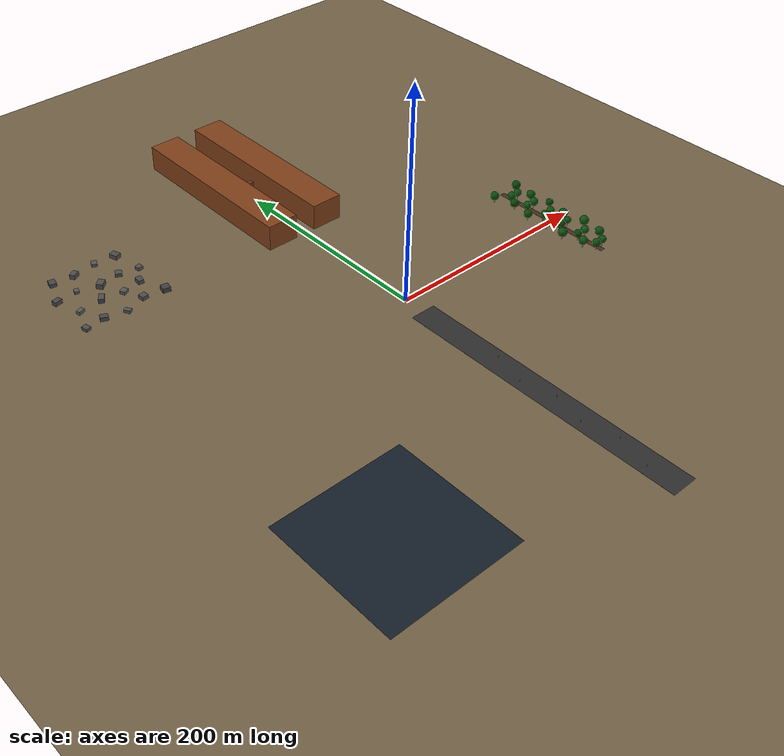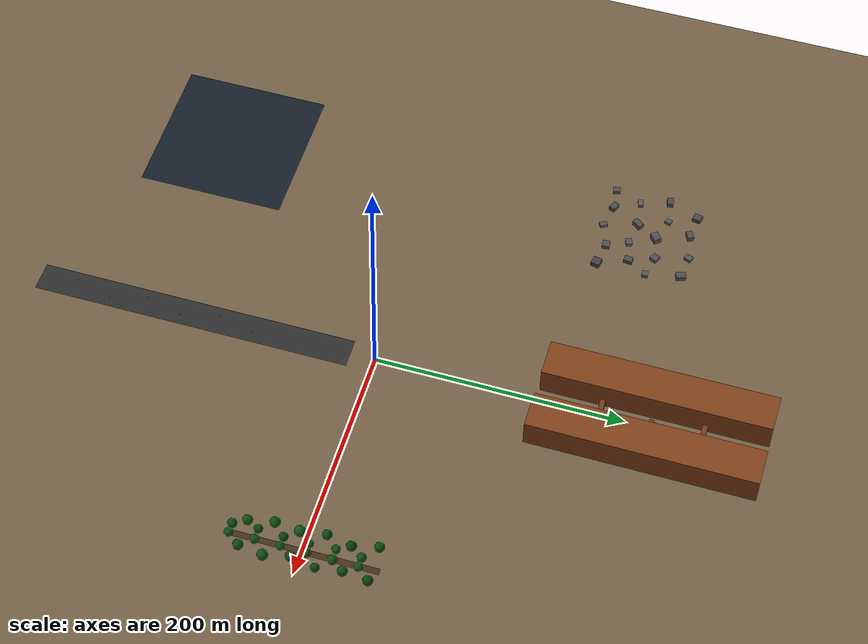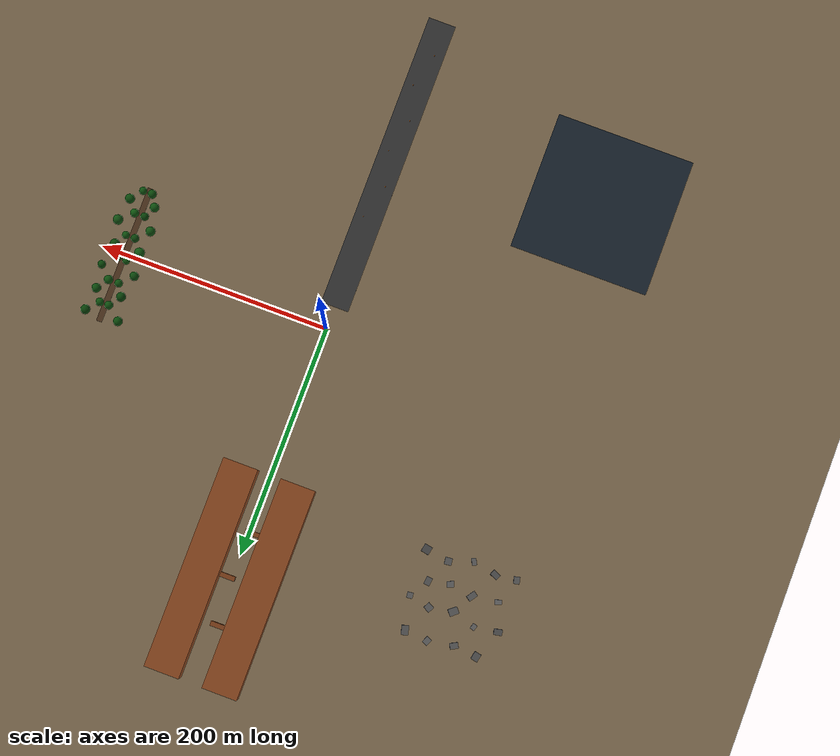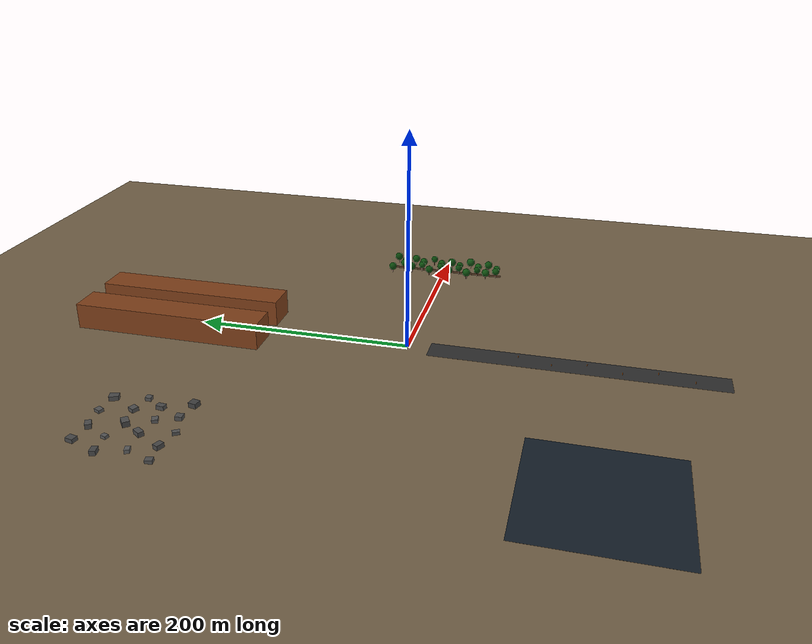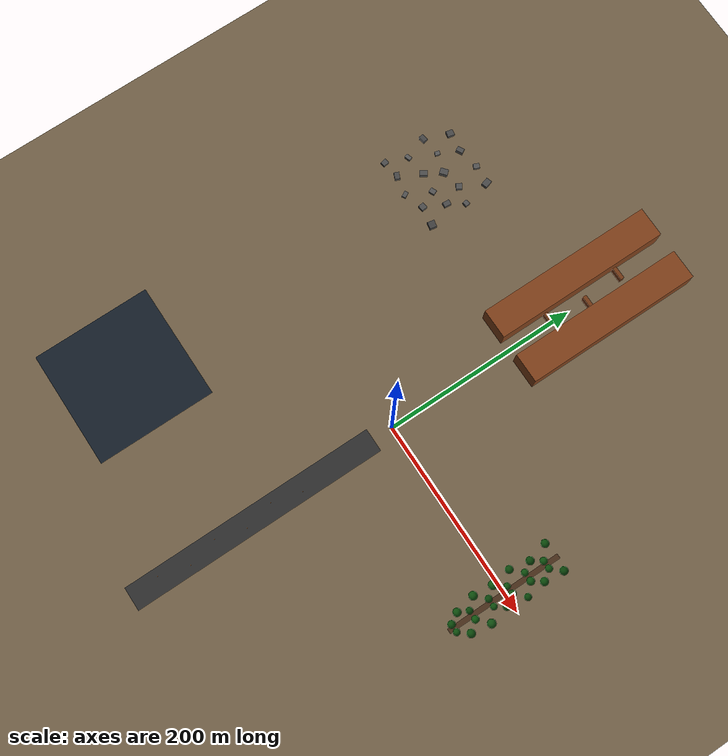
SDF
<?xml version="1.0" ?>
<sdf version="1.9">
  <world name="mega_rover_proving_ground_v4">

    <physics name="default_physics" type="ignored">
      <max_step_size>0.001</max_step_size>
      <real_time_factor>1.0</real_time_factor>
    </physics>

    <!-- Essential Gazebo Sim Plugins -->
    <plugin filename="gz-sim-physics-system" name="gz::sim::systems::Physics"/>
    <plugin filename="gz-sim-user-commands-system" name="gz::sim::systems::UserCommands"/>
    <plugin filename="gz-sim-scene-broadcaster-system" name="gz::sim::systems::SceneBroadcaster"/>
    <plugin filename="gz-sim-sensors-system" name="gz::sim::systems::Sensors"/>
    <plugin filename="gz-sim-particle-emitter-system" name="gz::sim::systems::ParticleEmitter"/>

    <!-- rmagine Embree (CPU) Map Plugin - Required for radarays radar simulation -->
    <!-- Builds a BVH acceleration structure for ray tracing over the Gazebo world -->
    <plugin name='rmagine_embree_map' filename='librmagine_embree_map_gzplugin.so'>
      <update>
        <delta_trans>0.001</delta_trans>
        <delta_rot>0.001</delta_rot>
        <delta_scale>0.001</delta_scale>
        <rate_limit>200</rate_limit>
      </update>
    </plugin>

    <!-- Sun Light -->
    <light type="directional" name="sun">
      <cast_shadows>true</cast_shadows>
      <pose>0 0 150 0.6 0.2 0</pose>
      <diffuse>0.85 0.8 0.7 1</diffuse>
      <specular>0.3 0.3 0.3 1</specular>
      <direction>-0.5 0.2 -0.8</direction>
    </light>

    <!-- Ground Plane -->
    <model name="base_ground">
      <static>true</static>
      <link name="link">
        <collision name="col">
          <geometry><plane><normal>0 0 1</normal><size>600 600</size></plane></geometry>
          <surface><friction><ode><mu>0.8</mu><mu2>0.8</mu2></ode></friction></surface>
        </collision>
        <visual name="vis">
          <geometry><plane><normal>0 0 1</normal><size>600 600</size></plane></geometry>
          <material><ambient>0.45 0.38 0.28 1</ambient><diffuse>0.45 0.38 0.28 1</diffuse></material>
        </visual>
      </link>
    </model>

    <!-- ZONE 0: HIGH SPEED SLALOM RUNWAY (Y = -150) -->
    <model name="speed_slalom_runway">
      <static>true</static>
      <pose>0 -150 0 0 0 0</pose>
      <link name="runway_strip">
        <pose>0 0 0.005 0 0 0</pose>
        <visual name="vis">
          <geometry><box><size>24 260 0.01</size></box></geometry>
          <material><ambient>0.18 0.18 0.18 1</ambient><diffuse>0.18 0.18 0.18 1</diffuse></material>
        </visual>
      </link>
      <link name="p1"><pose>-4 -100 1 0 0 0</pose><collision name="c"><geometry><cylinder><radius>0.25</radius><length>2</length></cylinder></geometry></collision><visual name="v"><geometry><cylinder><radius>0.25</radius><length>2</length></cylinder></geometry><material><ambient>0.9 0.4 0 1</ambient><diffuse>0.9 0.4 0 1</diffuse></material></visual></link>
      <link name="p2"><pose>4 -70 1 0 0 0</pose><collision name="c"><geometry><cylinder><radius>0.25</radius><length>2</length></cylinder></geometry></collision><visual name="v"><geometry><cylinder><radius>0.25</radius><length>2</length></cylinder></geometry><material><ambient>0.9 0.4 0 1</ambient><diffuse>0.9 0.4 0 1</diffuse></material></visual></link>
      <link name="p3"><pose>-4 -40 1 0 0 0</pose><collision name="c"><geometry><cylinder><radius>0.25</radius><length>2</length></cylinder></geometry></collision><visual name="v"><geometry><cylinder><radius>0.25</radius><length>2</length></cylinder></geometry><material><ambient>0.9 0.4 0 1</ambient><diffuse>0.9 0.4 0 1</diffuse></material></visual></link>
      <link name="p4"><pose>4 -10 1 0 0 0</pose><collision name="c"><geometry><cylinder><radius>0.25</radius><length>2</length></cylinder></geometry></collision><visual name="v"><geometry><cylinder><radius>0.25</radius><length>2</length></cylinder></geometry><material><ambient>0.9 0.4 0 1</ambient><diffuse>0.9 0.4 0 1</diffuse></material></visual></link>
      <link name="p5"><pose>-4 20 1 0 0 0</pose><collision name="c"><geometry><cylinder><radius>0.25</radius><length>2</length></cylinder></geometry></collision><visual name="v"><geometry><cylinder><radius>0.25</radius><length>2</length></cylinder></geometry><material><ambient>0.9 0.4 0 1</ambient><diffuse>0.9 0.4 0 1</diffuse></material></visual></link>
      <link name="p6"><pose>4 50 1 0 0 0</pose><collision name="c"><geometry><cylinder><radius>0.25</radius><length>2</length></cylinder></geometry></collision><visual name="v"><geometry><cylinder><radius>0.25</radius><length>2</length></cylinder></geometry><material><ambient>0.9 0.4 0 1</ambient><diffuse>0.9 0.4 0 1</diffuse></material></visual></link>
    </model>

    <!-- ZONE 1: DENSE FOREST WITH CENTER PATH (X=180, Y=0) -->
    <model name="forest_center_path_zone">
      <static>true</static>
      <pose>180 0 0 0 0 0</pose>

      <!-- Center Dirt Runway (5m Wide Clear Path) -->
      <link name="center_path_surface">
        <pose>0 0 0.008 0 0 0</pose>
        <visual name="v">
          <geometry><box><size>5 120 0.01</size></box></geometry>
          <material><ambient>0.28 0.18 0.1 1</ambient><diffuse>0.28 0.18 0.1 1</diffuse></material>
        </visual>
      </link>

      <!-- West Tree Line (Left of Path) -->
      <link name="tw1"><pose>-4 -55 3 0 0 0</pose><collision name="c"><geometry><cylinder><radius>0.45</radius><length>6</length></cylinder></geometry></collision><visual name="v"><geometry><cylinder><radius>0.45</radius><length>6</length></cylinder></geometry><material><ambient>0.2 0.1 0.05 1</ambient><diffuse>0.2 0.1 0.05 1</diffuse></material></visual><visual name="canopy"><pose>0 0 4 0 0 0</pose><geometry><sphere><radius>3.8</radius></sphere></geometry><material><ambient>0.04 0.28 0.04 1</ambient><diffuse>0.04 0.28 0.04 1</diffuse></material></visual></link>
      <link name="tw2"><pose>-10 -45 3 0 0 0</pose><collision name="c"><geometry><cylinder><radius>0.5</radius><length>6</length></cylinder></geometry></collision><visual name="v"><geometry><cylinder><radius>0.5</radius><length>6</length></cylinder></geometry><material><ambient>0.2 0.1 0.05 1</ambient><diffuse>0.2 0.1 0.05 1</diffuse></material></visual><visual name="canopy"><pose>0 0 4 0 0 0</pose><geometry><sphere><radius>4.0</radius></sphere></geometry><material><ambient>0.05 0.3 0.05 1</ambient><diffuse>0.05 0.3 0.05 1</diffuse></material></visual></link>
      <link name="tw3"><pose>-5 -35 3 0 0 0</pose><collision name="c"><geometry><cylinder><radius>0.4</radius><length>6</length></cylinder></geometry></collision><visual name="v"><geometry><cylinder><radius>0.4</radius><length>6</length></cylinder></geometry><material><ambient>0.2 0.1 0.05 1</ambient><diffuse>0.2 0.1 0.05 1</diffuse></material></visual><visual name="canopy"><pose>0 0 4 0 0 0</pose><geometry><sphere><radius>3.5</radius></sphere></geometry><material><ambient>0.03 0.25 0.03 1</ambient><diffuse>0.03 0.25 0.03 1</diffuse></material></visual></link>
      <link name="tw4"><pose>-14 -25 3 0 0 0</pose><collision name="c"><geometry><cylinder><radius>0.48</radius><length>6</length></cylinder></geometry></collision><visual name="v"><geometry><cylinder><radius>0.48</radius><length>6</length></cylinder></geometry><material><ambient>0.2 0.1 0.05 1</ambient><diffuse>0.2 0.1 0.05 1</diffuse></material></visual><visual name="canopy"><pose>0 0 4 0 0 0</pose><geometry><sphere><radius>4.2</radius></sphere></geometry><material><ambient>0.05 0.3 0.05 1</ambient><diffuse>0.05 0.3 0.05 1</diffuse></material></visual></link>
      <link name="tw5"><pose>-4 -15 3 0 0 0</pose><collision name="c"><geometry><cylinder><radius>0.42</radius><length>6</length></cylinder></geometry></collision><visual name="v"><geometry><cylinder><radius>0.42</radius><length>6</length></cylinder></geometry><material><ambient>0.2 0.1 0.05 1</ambient><diffuse>0.2 0.1 0.05 1</diffuse></material></visual><visual name="canopy"><pose>0 0 4 0 0 0</pose><geometry><sphere><radius>3.6</radius></sphere></geometry><material><ambient>0.04 0.26 0.04 1</ambient><diffuse>0.04 0.26 0.04 1</diffuse></material></visual></link>
      <link name="tw6"><pose>-12 -5 3 0 0 0</pose><collision name="c"><geometry><cylinder><radius>0.52</radius><length>6</length></cylinder></geometry></collision><visual name="v"><geometry><cylinder><radius>0.52</radius><length>6</length></cylinder></geometry><material><ambient>0.2 0.1 0.05 1</ambient><diffuse>0.2 0.1 0.05 1</diffuse></material></visual><visual name="canopy"><pose>0 0 4 0 0 0</pose><geometry><sphere><radius>4.4</radius></sphere></geometry><material><ambient>0.06 0.32 0.06 1</ambient><diffuse>0.06 0.32 0.06 1</diffuse></material></visual></link>
      <link name="tw7"><pose>-4 5 3 0 0 0</pose><collision name="c"><geometry><cylinder><radius>0.38</radius><length>6</length></cylinder></geometry></collision><visual name="v"><geometry><cylinder><radius>0.38</radius><length>6</length></cylinder></geometry><material><ambient>0.2 0.1 0.05 1</ambient><diffuse>0.2 0.1 0.05 1</diffuse></material></visual><visual name="canopy"><pose>0 0 4 0 0 0</pose><geometry><sphere><radius>3.3</radius></sphere></geometry><material><ambient>0.05 0.3 0.05 1</ambient><diffuse>0.05 0.3 0.05 1</diffuse></material></visual></link>
      <link name="tw8"><pose>-15 15 3 0 0 0</pose><collision name="c"><geometry><cylinder><radius>0.45</radius><length>6</length></cylinder></geometry></collision><visual name="v"><geometry><cylinder><radius>0.45</radius><length>6</length></cylinder></geometry><material><ambient>0.2 0.1 0.05 1</ambient><diffuse>0.2 0.1 0.05 1</diffuse></material></visual><visual name="canopy"><pose>0 0 4 0 0 0</pose><geometry><sphere><radius>3.9</radius></sphere></geometry><material><ambient>0.04 0.27 0.04 1</ambient><diffuse>0.04 0.27 0.04 1</diffuse></material></visual></link>
      <link name="tw9"><pose>-5 25 3 0 0 0</pose><collision name="c"><geometry><cylinder><radius>0.4</radius><length>6</length></cylinder></geometry></collision><visual name="v"><geometry><cylinder><radius>0.4</radius><length>6</length></cylinder></geometry><material><ambient>0.2 0.1 0.05 1</ambient><diffuse>0.2 0.1 0.05 1</diffuse></material></visual><visual name="canopy"><pose>0 0 4 0 0 0</pose><geometry><sphere><radius>3.5</radius></sphere></geometry><material><ambient>0.05 0.3 0.05 1</ambient><diffuse>0.05 0.3 0.05 1</diffuse></material></visual></link>
      <link name="tw10"><pose>-11 35 3 0 0 0</pose><collision name="c"><geometry><cylinder><radius>0.5</radius><length>6</length></cylinder></geometry></collision><visual name="v"><geometry><cylinder><radius>0.5</radius><length>6</length></cylinder></geometry><material><ambient>0.2 0.1 0.05 1</ambient><diffuse>0.2 0.1 0.05 1</diffuse></material></visual><visual name="canopy"><pose>0 0 4 0 0 0</pose><geometry><sphere><radius>4.1</radius></sphere></geometry><material><ambient>0.03 0.25 0.03 1</ambient><diffuse>0.03 0.25 0.03 1</diffuse></material></visual></link>
      <link name="tw11"><pose>-4 45 3 0 0 0</pose><collision name="c"><geometry><cylinder><radius>0.42</radius><length>6</length></cylinder></geometry></collision><visual name="v"><geometry><cylinder><radius>0.42</radius><length>6</length></cylinder></geometry><material><ambient>0.2 0.1 0.05 1</ambient><diffuse>0.2 0.1 0.05 1</diffuse></material></visual><visual name="canopy"><pose>0 0 4 0 0 0</pose><geometry><sphere><radius>3.7</radius></sphere></geometry><material><ambient>0.05 0.3 0.05 1</ambient><diffuse>0.05 0.3 0.05 1</diffuse></material></visual></link>
      <link name="tw12"><pose>-16 55 3 0 0 0</pose><collision name="c"><geometry><cylinder><radius>0.46</radius><length>6</length></cylinder></geometry></collision><visual name="v"><geometry><cylinder><radius>0.46</radius><length>6</length></cylinder></geometry><material><ambient>0.2 0.1 0.05 1</ambient><diffuse>0.2 0.1 0.05 1</diffuse></material></visual><visual name="canopy"><pose>0 0 4 0 0 0</pose><geometry><sphere><radius>4.0</radius></sphere></geometry><material><ambient>0.04 0.28 0.04 1</ambient><diffuse>0.04 0.28 0.04 1</diffuse></material></visual></link>

      <!-- East Tree Line (Right of Path) -->
      <link name="te1"><pose>4 -55 3 0 0 0</pose><collision name="c"><geometry><cylinder><radius>0.4</radius><length>6</length></cylinder></geometry></collision><visual name="v"><geometry><cylinder><radius>0.4</radius><length>6</length></cylinder></geometry><material><ambient>0.2 0.1 0.05 1</ambient><diffuse>0.2 0.1 0.05 1</diffuse></material></visual><visual name="canopy"><pose>0 0 4 0 0 0</pose><geometry><sphere><radius>3.4</radius></sphere></geometry><material><ambient>0.05 0.3 0.05 1</ambient><diffuse>0.05 0.3 0.05 1</diffuse></material></visual></link>
      <link name="te2"><pose>12 -45 3 0 0 0</pose><collision name="c"><geometry><cylinder><radius>0.48</radius><length>6</length></cylinder></geometry></collision><visual name="v"><geometry><cylinder><radius>0.48</radius><length>6</length></cylinder></geometry><material><ambient>0.2 0.1 0.05 1</ambient><diffuse>0.2 0.1 0.05 1</diffuse></material></visual><visual name="canopy"><pose>0 0 4 0 0 0</pose><geometry><sphere><radius>4.1</radius></sphere></geometry><material><ambient>0.04 0.28 0.04 1</ambient><diffuse>0.04 0.28 0.04 1</diffuse></material></visual></link>
      <link name="te3"><pose>4 -35 3 0 0 0</pose><collision name="c"><geometry><cylinder><radius>0.42</radius><length>6</length></cylinder></geometry></collision><visual name="v"><geometry><cylinder><radius>0.42</radius><length>6</length></cylinder></geometry><material><ambient>0.2 0.1 0.05 1</ambient><diffuse>0.2 0.1 0.05 1</diffuse></material></visual><visual name="canopy"><pose>0 0 4 0 0 0</pose><geometry><sphere><radius>3.7</radius></sphere></geometry><material><ambient>0.05 0.32 0.05 1</ambient><diffuse>0.05 0.32 0.05 1</diffuse></material></visual></link>
      <link name="te4"><pose>15 -25 3 0 0 0</pose><collision name="c"><geometry><cylinder><radius>0.5</radius><length>6</length></cylinder></geometry></collision><visual name="v"><geometry><cylinder><radius>0.5</radius><length>6</length></cylinder></geometry><material><ambient>0.2 0.1 0.05 1</ambient><diffuse>0.2 0.1 0.05 1</diffuse></material></visual><visual name="canopy"><pose>0 0 4 0 0 0</pose><geometry><sphere><radius>4.3</radius></sphere></geometry><material><ambient>0.06 0.3 0.06 1</ambient><diffuse>0.06 0.3 0.06 1</diffuse></material></visual></link>
      <link name="te5"><pose>4 -15 3 0 0 0</pose><collision name="c"><geometry><cylinder><radius>0.38</radius><length>6</length></cylinder></geometry></collision><visual name="v"><geometry><cylinder><radius>0.38</radius><length>6</length></cylinder></geometry><material><ambient>0.2 0.1 0.05 1</ambient><diffuse>0.2 0.1 0.05 1</diffuse></material></visual><visual name="canopy"><pose>0 0 4 0 0 0</pose><geometry><sphere><radius>3.3</radius></sphere></geometry><material><ambient>0.05 0.3 0.05 1</ambient><diffuse>0.05 0.3 0.05 1</diffuse></material></visual></link>
      <link name="te6"><pose>10 -5 3 0 0 0</pose><collision name="c"><geometry><cylinder><radius>0.52</radius><length>6</length></cylinder></geometry></collision><visual name="v"><geometry><cylinder><radius>0.52</radius><length>6</length></cylinder></geometry><material><ambient>0.2 0.1 0.05 1</ambient><diffuse>0.2 0.1 0.05 1</diffuse></material></visual><visual name="canopy"><pose>0 0 4 0 0 0</pose><geometry><sphere><radius>4.2</radius></sphere></geometry><material><ambient>0.04 0.27 0.04 1</ambient><diffuse>0.04 0.27 0.04 1</diffuse></material></visual></link>
      <link name="te7"><pose>4 5 3 0 0 0</pose><collision name="c"><geometry><cylinder><radius>0.44</radius><length>6</length></cylinder></geometry></collision><visual name="v"><geometry><cylinder><radius>0.44</radius><length>6</length></cylinder></geometry><material><ambient>0.2 0.1 0.05 1</ambient><diffuse>0.2 0.1 0.05 1</diffuse></material></visual><visual name="canopy"><pose>0 0 4 0 0 0</pose><geometry><sphere><radius>3.8</radius></sphere></geometry><material><ambient>0.05 0.3 0.05 1</ambient><diffuse>0.05 0.3 0.05 1</diffuse></material></visual></link>
      <link name="te8"><pose>14 15 3 0 0 0</pose><collision name="c"><geometry><cylinder><radius>0.4</radius><length>6</length></cylinder></geometry></collision><visual name="v"><geometry><cylinder><radius>0.4</radius><length>6</length></cylinder></geometry><material><ambient>0.2 0.1 0.05 1</ambient><diffuse>0.2 0.1 0.05 1</diffuse></material></visual><visual name="canopy"><pose>0 0 4 0 0 0</pose><geometry><sphere><radius>3.5</radius></sphere></geometry><material><ambient>0.03 0.26 0.03 1</ambient><diffuse>0.03 0.26 0.03 1</diffuse></material></visual></link>
      <link name="te9"><pose>4 25 3 0 0 0</pose><collision name="c"><geometry><cylinder><radius>0.46</radius><length>6</length></cylinder></geometry></collision><visual name="v"><geometry><cylinder><radius>0.46</radius><length>6</length></cylinder></geometry><material><ambient>0.2 0.1 0.05 1</ambient><diffuse>0.2 0.1 0.05 1</diffuse></material></visual><visual name="canopy"><pose>0 0 4 0 0 0</pose><geometry><sphere><radius>3.9</radius></sphere></geometry><material><ambient>0.05 0.3 0.05 1</ambient><diffuse>0.05 0.3 0.05 1</diffuse></material></visual></link>
      <link name="te10"><pose>11 35 3 0 0 0</pose><collision name="c"><geometry><cylinder><radius>0.5</radius><length>6</length></cylinder></geometry></collision><visual name="v"><geometry><cylinder><radius>0.5</radius><length>6</length></cylinder></geometry><material><ambient>0.2 0.1 0.05 1</ambient><diffuse>0.2 0.1 0.05 1</diffuse></material></visual><visual name="canopy"><pose>0 0 4 0 0 0</pose><geometry><sphere><radius>4.0</radius></sphere></geometry><material><ambient>0.04 0.28 0.04 1</ambient><diffuse>0.04 0.28 0.04 1</diffuse></material></visual></link>
      <link name="te11"><pose>4 45 3 0 0 0</pose><collision name="c"><geometry><cylinder><radius>0.42</radius><length>6</length></cylinder></geometry></collision><visual name="v"><geometry><cylinder><radius>0.42</radius><length>6</length></cylinder></geometry><material><ambient>0.2 0.1 0.05 1</ambient><diffuse>0.2 0.1 0.05 1</diffuse></material></visual><visual name="canopy"><pose>0 0 4 0 0 0</pose><geometry><sphere><radius>3.6</radius></sphere></geometry><material><ambient>0.05 0.3 0.05 1</ambient><diffuse>0.05 0.3 0.05 1</diffuse></material></visual></link>
      <link name="te12"><pose>13 55 3 0 0 0</pose><collision name="c"><geometry><cylinder><radius>0.48</radius><length>6</length></cylinder></geometry></collision><visual name="v"><geometry><cylinder><radius>0.48</radius><length>6</length></cylinder></geometry><material><ambient>0.2 0.1 0.05 1</ambient><diffuse>0.2 0.1 0.05 1</diffuse></material></visual><visual name="canopy"><pose>0 0 4 0 0 0</pose><geometry><sphere><radius>4.1</radius></sphere></geometry><material><ambient>0.03 0.25 0.03 1</ambient><diffuse>0.03 0.25 0.03 1</diffuse></material></visual></link>
    </model>

    <!-- ZONE 2: GRAND CANYON CHICANE PASS (NORTH: X=0, Y=220) -->
    <model name="canyon_chicane_complex">
      <static>true</static>
      <pose>0 220 0 0 0 0</pose>
      <link name="cliff_west"><pose>-25 0 12 0 0 0</pose><collision name="col"><geometry><box><size>30 180 24</size></box></geometry></collision><visual name="vis"><geometry><box><size>30 180 24</size></box></geometry><material><ambient>0.5 0.25 0.1 1</ambient><diffuse>0.5 0.25 0.1 1</diffuse></material></visual></link>
      <link name="cliff_east"><pose>25 0 12 0 0 0</pose><collision name="col"><geometry><box><size>30 180 24</size></box></geometry></collision><visual name="vis"><geometry><box><size>30 180 24</size></box></geometry><material><ambient>0.5 0.25 0.1 1</ambient><diffuse>0.5 0.25 0.1 1</diffuse></material></visual></link>
      <link name="baffle_1"><pose>-4 -40 4 0 0 0</pose><collision name="c"><geometry><box><size>14 4 8</size></box></geometry></collision><visual name="v"><geometry><box><size>14 4 8</size></box></geometry><material><ambient>0.45 0.22 0.08 1</ambient><diffuse>0.45 0.22 0.08 1</diffuse></material></visual></link>
      <link name="baffle_2"><pose>4 0 4 0 0 0</pose><collision name="c"><geometry><box><size>14 4 8</size></box></geometry></collision><visual name="v"><geometry><box><size>14 4 8</size></box></geometry><material><ambient>0.45 0.22 0.08 1</ambient><diffuse>0.45 0.22 0.08 1</diffuse></material></visual></link>
      <link name="baffle_3"><pose>-4 40 4 0 0 0</pose><collision name="c"><geometry><box><size>14 4 8</size></box></geometry></collision><visual name="v"><geometry><box><size>14 4 8</size></box></geometry><material><ambient>0.45 0.22 0.08 1</ambient><diffuse>0.45 0.22 0.08 1</diffuse></material></visual></link>
    </model>

    <!-- ZONE 3: MUD BASIN & RAIN SYSTEM (SOUTHWEST: X=-180, Y=-180) -->
    <model name="mud_basin_rain">
      <static>true</static>
      <pose>-180 -180 0 0 0 0</pose>
      <link name="mud_patch_main">
        <pose>0 0 0.01 0 0 0</pose>
        <collision name="col">
          <geometry><box><size>120 120 0.02</size></box></geometry>
          <surface><friction><ode><mu>0.08</mu><mu2>0.08</mu2></ode></friction></surface>
        </collision>
        <visual name="vis">
          <geometry><box><size>120 120 0.02</size></box></geometry>
          <material>
            <ambient>0.08 0.12 0.16 1</ambient>
            <diffuse>0.08 0.12 0.16 1</diffuse>
            <specular>0.98 0.98 0.98 1</specular>
          </material>
        </visual>
      </link>
      <link name="rain_emitter_link">
        <pose>0 0 18 0 0 0</pose>
        <particle_emitter name="rain_particles" type="box">
          <pose>0 0 0 0 0 0</pose>
          <size>110 110 1</size>
          <rate>400</rate>
          <lifetime>1.5</lifetime>
          <speed>14.0</speed>
          <particle_size>0.04 0.04 0.7</particle_size>
          <color_start>0.7 0.8 1.0 0.7</color_start>
          <color_end>0.5 0.7 0.9 0.2</color_end>
          <material>
            <ambient>0.7 0.8 1.0 0.6</ambient>
            <diffuse>0.7 0.8 1.0 0.6</diffuse>
          </material>
        </particle_emitter>
      </link>
    </model>

    <!-- ZONE 4: HIGH-DENSITY BOULDER LABYRINTH (NW: X=-180, Y=180) -->
    <model name="boulder_labyrinth_dense">
      <static>true</static>
      <pose>-180 180 0 0 0 0</pose>
      <link name="b1"><pose>-40 -40 1.5 0 0 0.2</pose><collision name="c"><geometry><box><size>5 6 3</size></box></geometry></collision><visual name="v"><geometry><box><size>5 6 3</size></box></geometry><material><ambient>0.3 0.3 0.3 1</ambient><diffuse>0.3 0.3 0.3 1</diffuse></material></visual></link>
      <link name="b2"><pose>-22 -38 2.0 0 0 -0.4</pose><collision name="c"><geometry><box><size>7 5 4</size></box></geometry></collision><visual name="v"><geometry><box><size>7 5 4</size></box></geometry><material><ambient>0.28 0.28 0.28 1</ambient><diffuse>0.28 0.28 0.28 1</diffuse></material></visual></link>
      <link name="b3"><pose>-2 -42 1.4 0 0 0.5</pose><collision name="c"><geometry><box><size>4 6 2.8</size></box></geometry></collision><visual name="v"><geometry><box><size>4 6 2.8</size></box></geometry><material><ambient>0.32 0.32 0.32 1</ambient><diffuse>0.32 0.32 0.32 1</diffuse></material></visual></link>
      <link name="b4"><pose>18 -35 1.8 0 0 0.1</pose><collision name="c"><geometry><box><size>6 6 3.6</size></box></geometry></collision><visual name="v"><geometry><box><size>6 6 3.6</size></box></geometry><material><ambient>0.3 0.3 0.3 1</ambient><diffuse>0.3 0.3 0.3 1</diffuse></material></visual></link>
      <link name="b5"><pose>38 -38 2.2 0 0 -0.2</pose><collision name="c"><geometry><box><size>7 7 4.4</size></box></geometry></collision><visual name="v"><geometry><box><size>7 7 4.4</size></box></geometry><material><ambient>0.25 0.25 0.25 1</ambient><diffuse>0.25 0.25 0.25 1</diffuse></material></visual></link>

      <link name="b6"><pose>-32 -18 1.6 0 0 0.3</pose><collision name="c"><geometry><box><size>6 4 3.2</size></box></geometry></collision><visual name="v"><geometry><box><size>6 4 3.2</size></box></geometry><material><ambient>0.35 0.35 0.35 1</ambient><diffuse>0.35 0.35 0.35 1</diffuse></material></visual></link>
      <link name="b7"><pose>-10 -15 2.1 0 0 -0.6</pose><collision name="c"><geometry><box><size>5 8 4.2</size></box></geometry></collision><visual name="v"><geometry><box><size>5 8 4.2</size></box></geometry><material><ambient>0.3 0.3 0.3 1</ambient><diffuse>0.3 0.3 0.3 1</diffuse></material></visual></link>
      <link name="b8"><pose>10 -18 1.5 0 0 0.4</pose><collision name="c"><geometry><box><size>6 5 3.0</size></box></geometry></collision><visual name="v"><geometry><box><size>6 5 3.0</size></box></geometry><material><ambient>0.33 0.33 0.33 1</ambient><diffuse>0.33 0.33 0.33 1</diffuse></material></visual></link>
      <link name="b9"><pose>28 -14 1.9 0 0 -0.1</pose><collision name="c"><geometry><box><size>5 7 3.8</size></box></geometry></collision><visual name="v"><geometry><box><size>5 7 3.8</size></box></geometry><material><ambient>0.29 0.29 0.29 1</ambient><diffuse>0.29 0.29 0.29 1</diffuse></material></visual></link>

      <link name="b10"><pose>-40 5 2.0 0 0 0.2</pose><collision name="c"><geometry><box><size>7 5 4.0</size></box></geometry></collision><visual name="v"><geometry><box><size>7 5 4.0</size></box></geometry><material><ambient>0.27 0.27 0.27 1</ambient><diffuse>0.27 0.27 0.27 1</diffuse></material></visual></link>
      <link name="b11"><pose>-20 8 1.3 0 0 -0.3</pose><collision name="c"><geometry><box><size>4 5 2.6</size></box></geometry></collision><visual name="v"><geometry><box><size>4 5 2.6</size></box></geometry><material><ambient>0.34 0.34 0.34 1</ambient><diffuse>0.34 0.34 0.34 1</diffuse></material></visual></link>
      <link name="b12"><pose>0 2 2.4 0 0 0.7</pose><collision name="c"><geometry><box><size>8 6 4.8</size></box></geometry></collision><visual name="v"><geometry><box><size>8 6 4.8</size></box></geometry><material><ambient>0.3 0.3 0.3 1</ambient><diffuse>0.3 0.3 0.3 1</diffuse></material></visual></link>
      <link name="b13"><pose>20 6 1.7 0 0 -0.5</pose><collision name="c"><geometry><box><size>6 6 3.4</size></box></geometry></collision><visual name="v"><geometry><box><size>6 6 3.4</size></box></geometry><material><ambient>0.31 0.31 0.31 1</ambient><diffuse>0.31 0.31 0.31 1</diffuse></material></visual></link>
      <link name="b14"><pose>38 2 1.6 0 0 0.1</pose><collision name="c"><geometry><box><size>5 5 3.2</size></box></geometry></collision><visual name="v"><geometry><box><size>5 5 3.2</size></box></geometry><material><ambient>0.32 0.32 0.32 1</ambient><diffuse>0.32 0.32 0.32 1</diffuse></material></visual></link>

      <link name="b15"><pose>-30 30 1.8 0 0 -0.2</pose><collision name="c"><geometry><box><size>6 7 3.6</size></box></geometry></collision><visual name="v"><geometry><box><size>6 7 3.6</size></box></geometry><material><ambient>0.28 0.28 0.28 1</ambient><diffuse>0.28 0.28 0.28 1</diffuse></material></visual></link>
      <link name="b16"><pose>-10 28 2.2 0 0 0.5</pose><collision name="c"><geometry><box><size>7 5 4.4</size></box></geometry></collision><visual name="v"><geometry><box><size>7 5 4.4</size></box></geometry><material><ambient>0.3 0.3 0.3 1</ambient><diffuse>0.3 0.3 0.3 1</diffuse></material></visual></link>
      <link name="b17"><pose>12 32 1.4 0 0 -0.4</pose><collision name="c"><geometry><box><size>5 6 2.8</size></box></geometry></collision><visual name="v"><geometry><box><size>5 6 2.8</size></box></geometry><material><ambient>0.33 0.33 0.33 1</ambient><diffuse>0.33 0.33 0.33 1</diffuse></material></visual></link>
      <link name="b18"><pose>32 30 2.0 0 0 0.3</pose><collision name="c"><geometry><box><size>6 8 4.0</size></box></geometry></collision><visual name="v"><geometry><box><size>6 8 4.0</size></box></geometry><material><ambient>0.29 0.29 0.29 1</ambient><diffuse>0.29 0.29 0.29 1</diffuse></material></visual></link>
    </model>

  </world>
</sdf>
